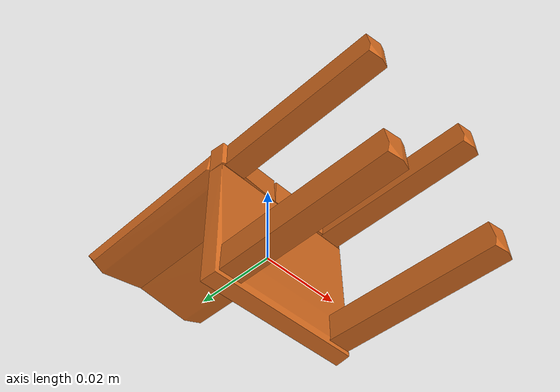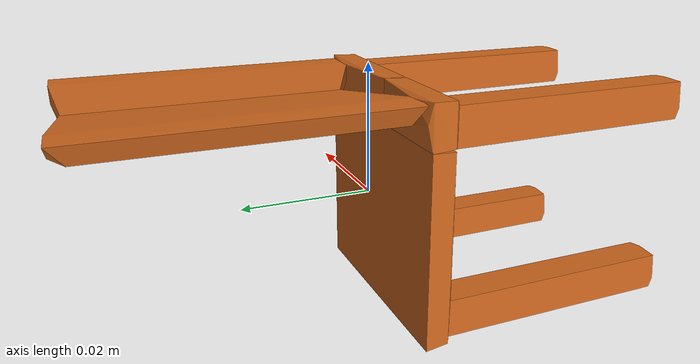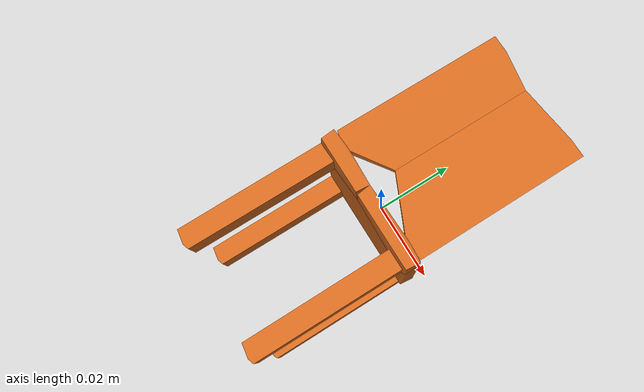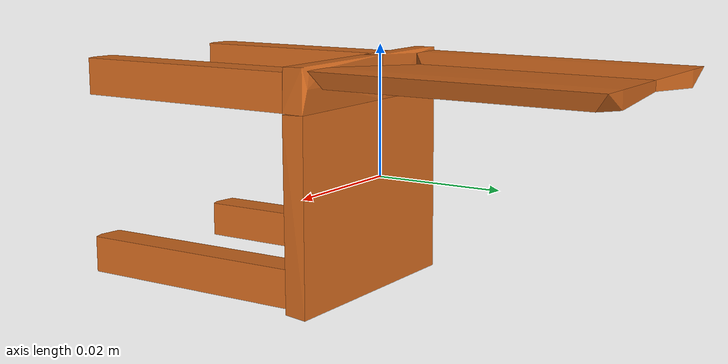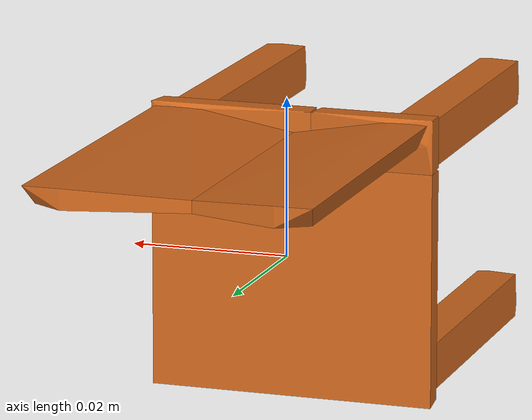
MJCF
<mujoco model="shapenet7-2">
  <asset>
    <mesh file="meshes/shapenet7-2/shapenet7-2_0.stl" name="shapenet7-2_0" scale="0.1 0.1 0.1"/>
    <mesh file="meshes/shapenet7-2/shapenet7-2_1.stl" name="shapenet7-2_1" scale="0.1 0.1 0.1"/>
    <mesh file="meshes/shapenet7-2/shapenet7-2_2.stl" name="shapenet7-2_2" scale="0.1 0.1 0.1"/>
    <mesh file="meshes/shapenet7-2/shapenet7-2_3.stl" name="shapenet7-2_3" scale="0.1 0.1 0.1"/>
    <mesh file="meshes/shapenet7-2/shapenet7-2_4.stl" name="shapenet7-2_4" scale="0.1 0.1 0.1"/>
    <mesh file="meshes/shapenet7-2/shapenet7-2_5.stl" name="shapenet7-2_5" scale="0.1 0.1 0.1"/>
    <mesh file="meshes/shapenet7-2/shapenet7-2_6.stl" name="shapenet7-2_6" scale="0.1 0.1 0.1"/>
    <mesh file="meshes/shapenet7-2/shapenet7-2_7.stl" name="shapenet7-2_7" scale="0.1 0.1 0.1"/>
    <mesh file="meshes/shapenet7-2/shapenet7-2_8.stl" name="shapenet7-2_8" scale="0.1 0.1 0.1"/>
    <texture file="../textures/light_wood.png" name="tex-lightwood" />
    <material name="lightwood" reflectance="0.7" texrepeat="15 15" texture="tex-lightwood" texuniform="true"/>
  </asset>
  <worldbody>
    <body>
      <body name="collision">
        <geom pos="0 0 0" mesh="shapenet7-2_0" type="mesh" solimp="0.998 0.998 0.001" solref="0.001 1" density="100" friction="0.95 0.3 0.1" rgba="0.82 0.41 0.12 1" group="1" condim="4"/>
        <geom pos="0 0 0" mesh="shapenet7-2_1" type="mesh" solimp="0.998 0.998 0.001" solref="0.001 1" density="100" friction="0.95 0.3 0.1" rgba="0.82 0.41 0.12 1" group="1" condim="4"/>
        <geom pos="0 0 0" mesh="shapenet7-2_2" type="mesh" solimp="0.998 0.998 0.001" solref="0.001 1" density="100" friction="0.95 0.3 0.1" rgba="0.82 0.41 0.12 1" group="1" condim="4"/>
        <geom pos="0 0 0" mesh="shapenet7-2_3" type="mesh" solimp="0.998 0.998 0.001" solref="0.001 1" density="100" friction="0.95 0.3 0.1" rgba="0.82 0.41 0.12 1" group="1" condim="4"/>
        <geom pos="0 0 0" mesh="shapenet7-2_4" type="mesh" solimp="0.998 0.998 0.001" solref="0.001 1" density="100" friction="0.95 0.3 0.1" rgba="0.82 0.41 0.12 1" group="1" condim="4"/>
        <geom pos="0 0 0" mesh="shapenet7-2_5" type="mesh" solimp="0.998 0.998 0.001" solref="0.001 1" density="100" friction="0.95 0.3 0.1" rgba="0.82 0.41 0.12 1" group="1" condim="4"/>
        <geom pos="0 0 0" mesh="shapenet7-2_6" type="mesh" solimp="0.998 0.998 0.001" solref="0.001 1" density="100" friction="0.95 0.3 0.1" rgba="0.82 0.41 0.12 1" group="1" condim="4"/>
        <geom pos="0 0 0" mesh="shapenet7-2_7" type="mesh" solimp="0.998 0.998 0.001" solref="0.001 1" density="100" friction="0.95 0.3 0.1" rgba="0.82 0.41 0.12 1" group="1" condim="4"/>
        <geom pos="0 0 0" mesh="shapenet7-2_8" type="mesh" solimp="0.998 0.998 0.001" solref="0.001 1" density="100" friction="0.95 0.3 0.1" rgba="0.82 0.41 0.12 1" group="1" condim="4"/>
      </body>
      <body name="visual">
        <geom pos="0 0 0" mesh="shapenet7-2_0" type="mesh" material="lightwood" conaffinity="0" contype="0" group="0" mass="0.0001"/>
        <geom pos="0 0 0" mesh="shapenet7-2_1" type="mesh" material="lightwood" conaffinity="0" contype="0" group="0" mass="0.0001"/>
        <geom pos="0 0 0" mesh="shapenet7-2_2" type="mesh" material="lightwood" conaffinity="0" contype="0" group="0" mass="0.0001"/>
        <geom pos="0 0 0" mesh="shapenet7-2_3" type="mesh" material="lightwood" conaffinity="0" contype="0" group="0" mass="0.0001"/>
        <geom pos="0 0 0" mesh="shapenet7-2_4" type="mesh" material="lightwood" conaffinity="0" contype="0" group="0" mass="0.0001"/>
        <geom pos="0 0 0" mesh="shapenet7-2_5" type="mesh" material="lightwood" conaffinity="0" contype="0" group="0" mass="0.0001"/>
        <geom pos="0 0 0" mesh="shapenet7-2_6" type="mesh" material="lightwood" conaffinity="0" contype="0" group="0" mass="0.0001"/>
        <geom pos="0 0 0" mesh="shapenet7-2_7" type="mesh" material="lightwood" conaffinity="0" contype="0" group="0" mass="0.0001"/>
        <geom pos="0 0 0" mesh="shapenet7-2_8" type="mesh" material="lightwood" conaffinity="0" contype="0" group="0" mass="0.0001"/>
      </body>
      <site rgba="0 0 0 0" size="0.005" pos="0 0 -0.06" name="bottom_site"/>
      <site rgba="0 0 0 0" size="0.005" pos="0 0 0.04" name="top_site"/>
      <site rgba="0 0 0 0" size="0.005" pos="0.025 0.025 0" name="horizontal_radius_site"/>
    </body>
  </worldbody>
</mujoco>
